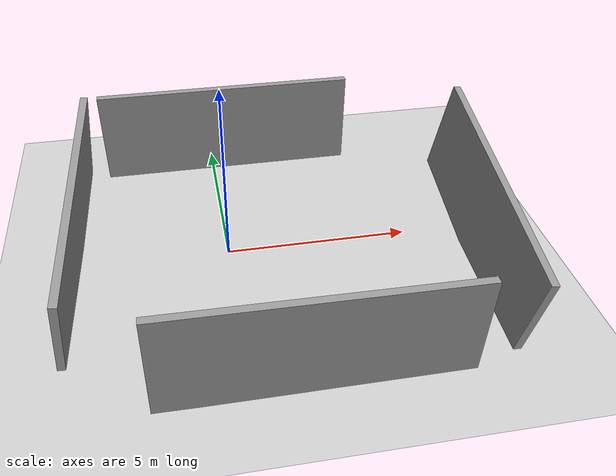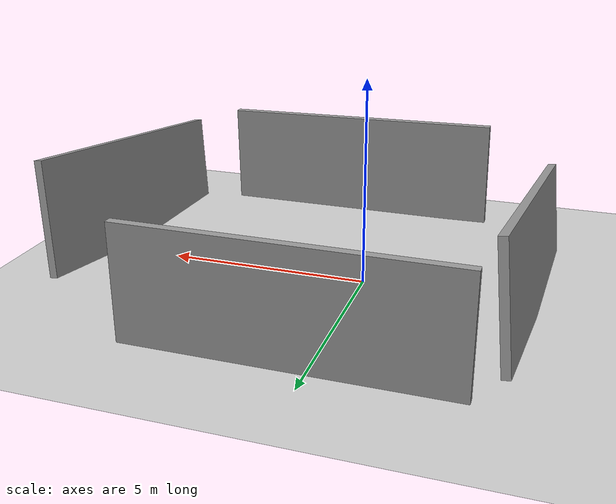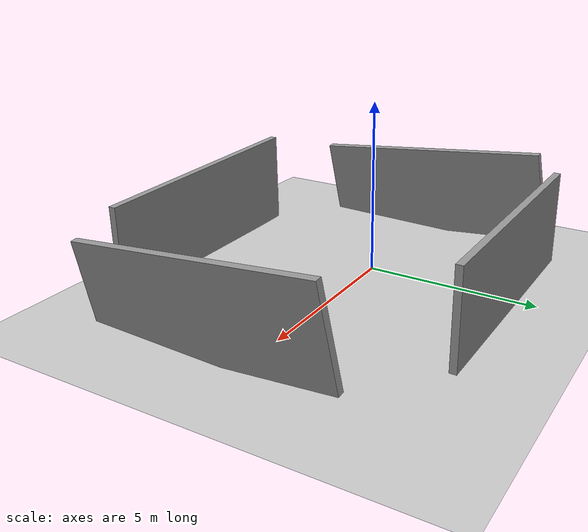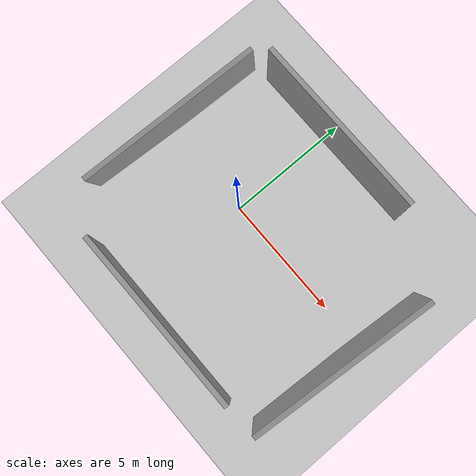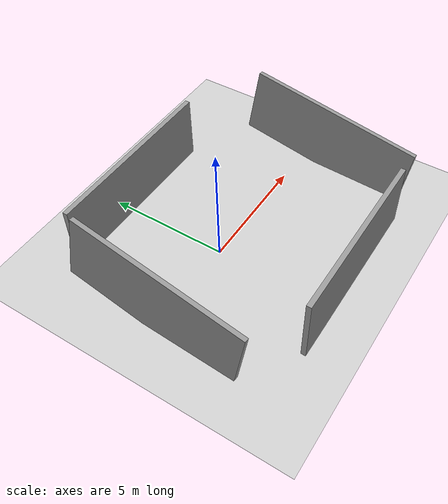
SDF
<sdf version="1.6">
 <world name="default">
  <scene><ambient>0.4 0.4 0.4 1</ambient><background>0.7 0.7 0.7 1</background><shadows>1</shadows></scene>
  <light name="sun" type="directional">
   <pose>0 0 10 0 -0 0</pose>
   <diffuse>0.8 0.8 0.8 1</diffuse>
   <specular>0.2 0.2 0.2 1</specular>
   <attenuation>
    <range>1000</range>
    <constant>0.9</constant>
    <linear>0.01</linear>
    <quadratic>0.001</quadratic>
   </attenuation>
   <direction>-0.5 0.1 -0.9</direction>
  </light>
  <model name="ground_plane">
   <static>1</static>
   <link name="link">
    <collision name="collision">
     <geometry><plane><normal>0 0 1</normal><size>100 100</size></plane></geometry>
     <surface><friction><ode><mu>100</mu><mu2>50</mu2></ode></friction></surface>
    </collision>
    <visual name="visual">
     <cast_shadows>0</cast_shadows>
     <geometry><plane><normal>0 0 1</normal><size>100 100</size></plane></geometry>
     <material>
      <script><uri>file://media/materials/scripts/gazebo.material</uri><name>Gazebo/Grey</name></script>
     </material>
    </visual>
   </link>
  </model>
  <physics name="default_physics" default="0" type="ode">
   <real_time_update_rate>1000</real_time_update_rate>
   <max_step_size>0.001</max_step_size>
   <real_time_factor>1</real_time_factor>
   <ode>
    <solver>
     <type>quick</type>
     <iters>150</iters>
     <precon_iters>0</precon_iters>
     <sor>1.4</sor>
     <use_dynamic_moi_rescaling>1</use_dynamic_moi_rescaling>
    </solver>
    <constraints>
     <cfm>1e-05</cfm>
     <erp>0.2</erp>
     <contact_max_correcting_vel>2000</contact_max_correcting_vel>
     <contact_surface_layer>0.01</contact_surface_layer>
    </constraints>
   </ode>
  </physics>
  <gravity>0 0 -9.8</gravity>
  <magnetic_field>6e-06 2.3e-05 -4.2e-05</magnetic_field>
  <atmosphere type="adiabatic"/>
  <spherical_coordinates>
   <surface_model>EARTH_WGS84</surface_model>
   <latitude_deg>0</latitude_deg>
   <longitude_deg>0</longitude_deg>
   <elevation>0</elevation>
   <heading_deg>0</heading_deg>
  </spherical_coordinates>
  <model name="grey_wall">
   <static>1</static>
   <link name="link">
    <pose>0 0 1.4 0 -0 0</pose>
    <collision name="collision"><geometry><box><size>7.5 0.2 2.8</size></box></geometry></collision>
    <visual name="visual">
     <cast_shadows>0</cast_shadows>
     <geometry><box><size>7.5 0.2 2.8</size></box></geometry>
     <material>
      <script>
       <uri>model://grey_wall/materials/scripts</uri>
       <uri>model://grey_wall/materials/textures</uri>
       <name>vrc/grey_wall</name>
      </script>
     </material>
    </visual>
   </link>
   <pose>0.472395 4.3307 -0.054157 0 -0 0</pose>
  </model>
  <model name="grey_wall_clone">
   <static>1</static>
   <link name="link">
    <pose>0 0 1.4 0 -0 0</pose>
    <collision name="collision"><geometry><box><size>7.5 0.2 2.8</size></box></geometry></collision>
    <visual name="visual">
     <cast_shadows>0</cast_shadows>
     <geometry><box><size>7.5 0.2 2.8</size></box></geometry>
     <material>
      <script>
       <uri>model://grey_wall/materials/scripts</uri>
       <uri>model://grey_wall/materials/textures</uri>
       <name>vrc/grey_wall</name>
      </script>
     </material>
    </visual>
   </link>
   <pose>1.47262 -4.93478 -0.054157 0 0.014609 0</pose>
  </model>
  <model name="grey_wall_clone_clone">
   <static>1</static>
   <link name="link">
    <pose>0 0 1.4 0 -0 0</pose>
    <collision name="collision"><geometry><box><size>7.5 0.2 2.8</size></box></geometry></collision>
    <visual name="visual">
     <cast_shadows>0</cast_shadows>
     <geometry><box><size>7.5 0.2 2.8</size></box></geometry>
     <material>
      <script>
       <uri>model://grey_wall/materials/scripts</uri>
       <uri>model://grey_wall/materials/textures</uri>
       <name>vrc/grey_wall</name>
      </script>
     </material>
    </visual>
   </link>
   <pose>6.54747 -0.88098 -0.054157 -0.119378 0.117289 -1.63391</pose>
  </model>
  <model name="grey_wall_clone_clone_clone">
   <static>1</static>
   <link name="link">
    <pose>0 0 1.4 0 -0 0</pose>
    <collision name="collision"><geometry><box><size>7.5 0.2 2.8</size></box></geometry></collision>
    <visual name="visual">
     <cast_shadows>0</cast_shadows>
     <geometry><box><size>7.5 0.2 2.8</size></box></geometry>
     <material>
      <script>
       <uri>model://grey_wall/materials/scripts</uri>
       <uri>model://grey_wall/materials/textures</uri>
       <name>vrc/grey_wall</name>
      </script>
     </material>
    </visual>
   </link>
   <pose>-4.09339 0.309862 -0.054157 -0.119378 0.117289 -1.63391</pose>
  </model>
 </world>
</sdf>
